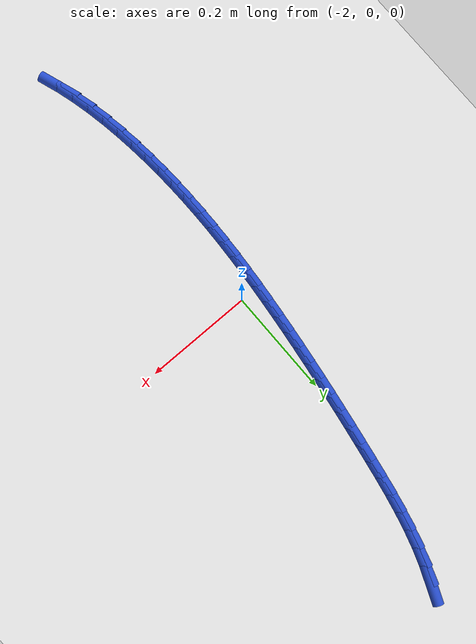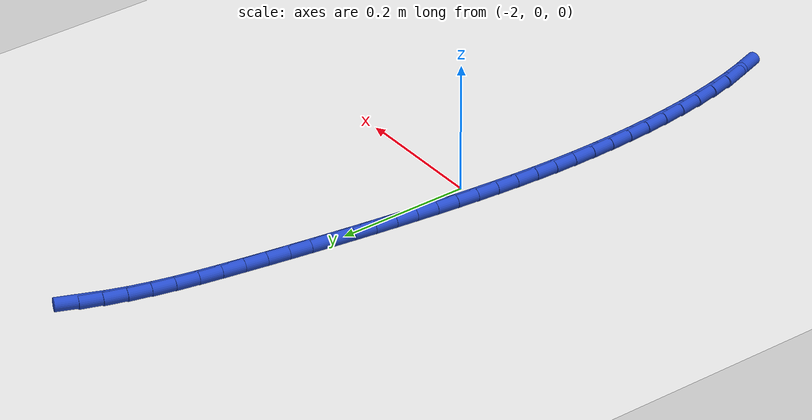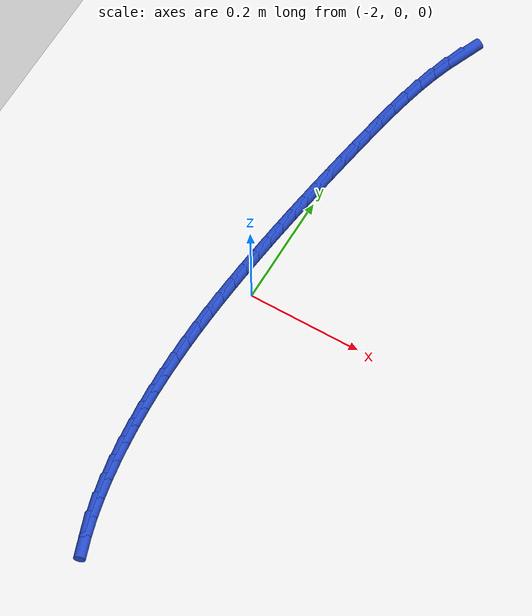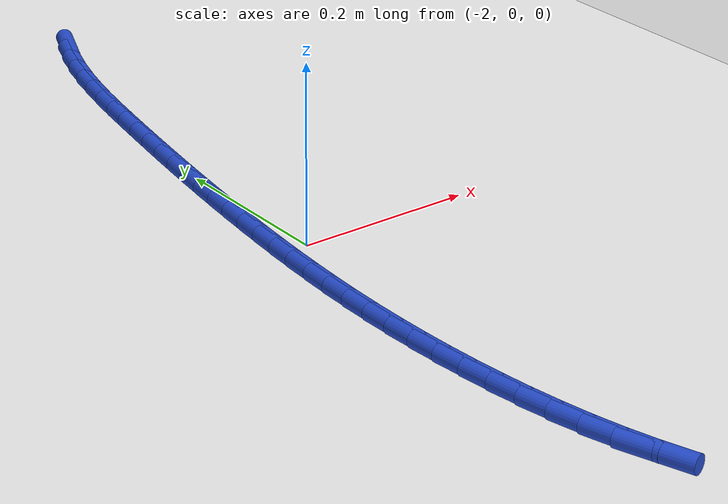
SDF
<sdf version="1.6">
 <world name="default">
  <model name="ground_plane">
   <static>1</static>
   <link name="link">
    <collision name="collision">
     <geometry><plane><normal>0 0 1</normal><size>100 100</size></plane></geometry>
     <surface><friction><ode><mu>100</mu><mu2>50</mu2></ode></friction></surface>
    </collision>
    <visual name="visual">
     <cast_shadows>0</cast_shadows>
     <geometry><plane><normal>0 0 1</normal><size>100 100</size></plane></geometry>
     <material>
      <script><uri>file://media/materials/scripts/gazebo.material</uri><name>Gazebo/WhiteGlow</name></script>
     </material>
    </visual>
   </link>
  </model>
  <model name="line">
   <link name="link_82">
    <pose>-1.928371689999309 0.5793839912906367 0.01 0 1.57 1.1767128693635323</pose>
    <collision name="collision">
     <geometry><cylinder><radius>0.01</radius><length>0.08</length></cylinder></geometry>
    </collision>
    <visual name="visual">
     <material>
      <script><name>Gazebo/Blue</name><uri>file://media/materials/scripts/gazebo.material</uri></script>
     </material>
     <geometry><cylinder><radius>0.01</radius><length>0.08</length></cylinder></geometry>
    </visual>
   </link>
   <link name="link_83">
    <pose>-1.9408741109656218 0.5493182701665158 0.01 0 1.57 1.2377879610943872</pose>
    <collision name="collision">
     <geometry><cylinder><radius>0.01</radius><length>0.08</length></cylinder></geometry>
    </collision>
    <visual name="visual">
     <material>
      <script><name>Gazebo/Blue</name><uri>file://media/materials/scripts/gazebo.material</uri></script>
     </material>
     <geometry><cylinder><radius>0.01</radius><length>0.08</length></cylinder></geometry>
    </visual>
   </link>
   <link name="link_84">
    <pose>-1.951651874403796 0.5181587281971894 0.01 0 1.57 1.288396880568661</pose>
    <collision name="collision">
     <geometry><cylinder><radius>0.01</radius><length>0.08</length></cylinder></geometry>
    </collision>
    <visual name="visual">
     <material>
      <script><name>Gazebo/Blue</name><uri>file://media/materials/scripts/gazebo.material</uri></script>
     </material>
     <geometry><cylinder><radius>0.01</radius><length>0.08</length></cylinder></geometry>
    </visual>
   </link>
   <link name="link_85">
    <pose>-1.960949134474584 0.4861162236051143 0.01 0 1.57 1.3292078590738747</pose>
    <collision name="collision">
     <geometry><cylinder><radius>0.01</radius><length>0.08</length></cylinder></geometry>
    </collision>
    <visual name="visual">
     <material>
      <script><name>Gazebo/Blue</name><uri>file://media/materials/scripts/gazebo.material</uri></script>
     </material>
     <geometry><cylinder><radius>0.01</radius><length>0.08</length></cylinder></geometry>
    </visual>
   </link>
   <link name="link_86">
    <pose>-1.9690100453387367 0.4534016146127484 0.01 0 1.57 1.3608674591322607</pose>
    <collision name="collision">
     <geometry><cylinder><radius>0.01</radius><length>0.08</length></cylinder></geometry>
    </collision>
    <visual name="visual">
     <material>
      <script><name>Gazebo/Blue</name><uri>file://media/materials/scripts/gazebo.material</uri></script>
     </material>
     <geometry><cylinder><radius>0.01</radius><length>0.08</length></cylinder></geometry>
    </visual>
   </link>
   <link name="link_87">
    <pose>-1.9760787611570068 0.4202257594425492 0.01 0 1.57 1.383909740635225</pose>
    <collision name="collision">
     <geometry><cylinder><radius>0.01</radius><length>0.08</length></cylinder></geometry>
    </collision>
    <visual name="visual">
     <material>
      <script><name>Gazebo/Blue</name><uri>file://media/materials/scripts/gazebo.material</uri></script>
     </material>
     <geometry><cylinder><radius>0.01</radius><length>0.08</length></cylinder></geometry>
    </visual>
   </link>
   <link name="link_88">
    <pose>-1.9823994360901445 0.38679951631697407 0.01 0 1.57 1.3987025672282007</pose>
    <collision name="collision">
     <geometry><cylinder><radius>0.01</radius><length>0.08</length></cylinder></geometry>
    </collision>
    <visual name="visual">
     <material>
      <script><name>Gazebo/Blue</name><uri>file://media/materials/scripts/gazebo.material</uri></script>
     </material>
     <geometry><cylinder><radius>0.01</radius><length>0.08</length></cylinder></geometry>
    </visual>
   </link>
   <link name="link_89">
    <pose>-1.9882162242989037 0.3533337434584808 0.01 0 1.57 1.4058946657048426</pose>
    <collision name="collision">
     <geometry><cylinder><radius>0.01</radius><length>0.08</length></cylinder></geometry>
    </collision>
    <visual name="visual">
     <material>
      <script><name>Gazebo/Blue</name><uri>file://media/materials/scripts/gazebo.material</uri></script>
     </material>
     <geometry><cylinder><radius>0.01</radius><length>0.08</length></cylinder></geometry>
    </visual>
   </link>
   <link name="link_90">
    <pose>-1.9937590482393874 0.3200260654052722 0.01 0 1.57 1.4105668031041376</pose>
    <collision name="collision">
     <geometry><cylinder><radius>0.01</radius><length>0.08</length></cylinder></geometry>
    </collision>
    <visual name="visual">
     <material>
      <script><name>Gazebo/Blue</name><uri>file://media/materials/scripts/gazebo.material</uri></script>
     </material>
     <geometry><cylinder><radius>0.01</radius><length>0.08</length></cylinder></geometry>
    </visual>
   </link>
   <link name="link_91">
    <pose>-1.999107213070123 0.2869340516699003 0.01 0 1.57 1.4157654196155374</pose>
    <collision name="collision">
     <geometry><cylinder><radius>0.01</radius><length>0.08</length></cylinder></geometry>
    </collision>
    <visual name="visual">
     <material>
      <script><name>Gazebo/Blue</name><uri>file://media/materials/scripts/gazebo.material</uri></script>
     </material>
     <geometry><cylinder><radius>0.01</radius><length>0.08</length></cylinder></geometry>
    </visual>
   </link>
   <link name="link_92">
    <pose>-2.004249457645657 0.2540310565636685 0.01 0 1.57 1.4215312784293013</pose>
    <collision name="collision">
     <geometry><cylinder><radius>0.01</radius><length>0.08</length></cylinder></geometry>
    </collision>
    <visual name="visual">
     <material>
      <script><name>Gazebo/Blue</name><uri>file://media/materials/scripts/gazebo.material</uri></script>
     </material>
     <geometry><cylinder><radius>0.01</radius><length>0.08</length></cylinder></geometry>
    </visual>
   </link>
   <link name="link_93">
    <pose>-2.0091732822341024 0.22128928266924433 0.01 0 1.57 1.4278604978135168</pose>
    <collision name="collision">
     <geometry><cylinder><radius>0.01</radius><length>0.08</length></cylinder></geometry>
    </collision>
    <visual name="visual">
     <material>
      <script><name>Gazebo/Blue</name><uri>file://media/materials/scripts/gazebo.material</uri></script>
     </material>
     <geometry><cylinder><radius>0.01</radius><length>0.08</length></cylinder></geometry>
    </visual>
   </link>
   <link name="link_94">
    <pose>-2.0138661871035723 0.18868093256929547 0.01 0 1.57 1.4347462300118203</pose>
    <collision name="collision">
     <geometry><cylinder><radius>0.01</radius><length>0.08</length></cylinder></geometry>
    </collision>
    <visual name="visual">
     <material>
      <script><name>Gazebo/Blue</name><uri>file://media/materials/scripts/gazebo.material</uri></script>
     </material>
     <geometry><cylinder><radius>0.01</radius><length>0.08</length></cylinder></geometry>
    </visual>
   </link>
   <link name="link_95">
    <pose>-2.018315672522181 0.15617820884648959 0.01 0 1.57 1.442178588195418</pose>
    <collision name="collision">
     <geometry><cylinder><radius>0.01</radius><length>0.08</length></cylinder></geometry>
    </collision>
    <visual name="visual">
     <material>
      <script><name>Gazebo/Blue</name><uri>file://media/materials/scripts/gazebo.material</uri></script>
     </material>
     <geometry><cylinder><radius>0.01</radius><length>0.08</length></cylinder></geometry>
    </visual>
   </link>
   <link name="link_96">
    <pose>-2.0225092387580403 0.12375331408349453 0.01 0 1.57 1.4501446077308269</pose>
    <collision name="collision">
     <geometry><cylinder><radius>0.01</radius><length>0.08</length></cylinder></geometry>
    </collision>
    <visual name="visual">
     <material>
      <script><name>Gazebo/Blue</name><uri>file://media/materials/scripts/gazebo.material</uri></script>
     </material>
     <geometry><cylinder><radius>0.01</radius><length>0.08</length></cylinder></geometry>
    </visual>
   </link>
   <link name="link_97">
    <pose>-2.0264343860792646 0.0913784508629772 0.01 0 1.57 1.4586282453498665</pose>
    <collision name="collision">
     <geometry><cylinder><radius>0.01</radius><length>0.08</length></cylinder></geometry>
    </collision>
    <visual name="visual">
     <material>
      <script><name>Gazebo/Blue</name><uri>file://media/materials/scripts/gazebo.material</uri></script>
     </material>
     <geometry><cylinder><radius>0.01</radius><length>0.08</length></cylinder></geometry>
    </visual>
   </link>
   <link name="link_98">
    <pose>-2.0300786147539673 0.059025821767605666 0.01 0 1.57 1.4676950255855228</pose>
    <collision name="collision">
     <geometry><cylinder><radius>0.01</radius><length>0.08</length></cylinder></geometry>
    </collision>
    <visual name="visual">
     <material>
      <script><name>Gazebo/Blue</name><uri>file://media/materials/scripts/gazebo.material</uri></script>
     </material>
     <geometry><cylinder><radius>0.01</radius><length>0.08</length></cylinder></geometry>
    </visual>
   </link>
   <link name="link_99">
    <pose>-2.0334266383383572 0.02666781947142263 0.01 0 1.57 1.4781153436558063</pose>
    <collision name="collision">
     <geometry><cylinder><radius>0.01</radius><length>0.08</length></cylinder></geometry>
    </collision>
    <visual name="visual">
     <material>
      <script><name>Gazebo/Blue</name><uri>file://media/materials/scripts/gazebo.material</uri></script>
     </material>
     <geometry><cylinder><radius>0.01</radius><length>0.08</length></cylinder></geometry>
    </visual>
   </link>
   <link name="link_100">
    <pose>-2.0364371265549046 -0.005721386810451544 0.01 0 1.57 1.4902989672346814</pose>
    <collision name="collision">
     <geometry><cylinder><radius>0.01</radius><length>0.08</length></cylinder></geometry>
    </collision>
    <visual name="visual">
     <material>
      <script><name>Gazebo/Blue</name><uri>file://media/materials/scripts/gazebo.material</uri></script>
     </material>
     <geometry><cylinder><radius>0.01</radius><length>0.08</length></cylinder></geometry>
    </visual>
   </link>
   <link name="link_101">
    <pose>-2.0390545411778924 -0.03816665868900908 0.01 0 1.57 1.50422061097316</pose>
    <collision name="collision">
     <geometry><cylinder><radius>0.01</radius><length>0.08</length></cylinder></geometry>
    </collision>
    <visual name="visual">
     <material>
      <script><name>Gazebo/Blue</name><uri>file://media/materials/scripts/gazebo.material</uri></script>
     </material>
     <geometry><cylinder><radius>0.01</radius><length>0.08</length></cylinder></geometry>
    </visual>
   </link>
   <link name="link_102">
    <pose>-2.0412232005290774 -0.07069284798984342 0.01 0 1.57 1.5198407036942827</pose>
    <collision name="collision">
     <geometry><cylinder><radius>0.01</radius><length>0.08</length></cylinder></geometry>
    </collision>
    <visual name="visual">
     <material>
      <script><name>Gazebo/Blue</name><uri>file://media/materials/scripts/gazebo.material</uri></script>
     </material>
     <geometry><cylinder><radius>0.01</radius><length>0.08</length></cylinder></geometry>
    </visual>
   </link>
   <link name="link_103">
    <pose>-2.0428874229302187 -0.10332480653854792 0.01 0 1.57 1.5371089281436998</pose>
    <collision name="collision">
     <geometry><cylinder><radius>0.01</radius><length>0.08</length></cylinder></geometry>
    </collision>
    <visual name="visual">
     <material>
      <script><name>Gazebo/Blue</name><uri>file://media/materials/scripts/gazebo.material</uri></script>
     </material>
     <geometry><cylinder><radius>0.01</radius><length>0.08</length></cylinder></geometry>
    </visual>
   </link>
   <link name="link_104">
    <pose>-2.043991526703074 -0.13608738616071608 0.01 0 1.57 1.55596350354361</pose>
    <collision name="collision">
     <geometry><cylinder><radius>0.01</radius><length>0.08</length></cylinder></geometry>
    </collision>
    <visual name="visual">
     <material>
      <script><name>Gazebo/Blue</name><uri>file://media/materials/scripts/gazebo.material</uri></script>
     </material>
     <geometry><cylinder><radius>0.01</radius><length>0.08</length></cylinder></geometry>
    </visual>
   </link>
   <link name="link_105">
    <pose>-2.0444798301694025 -0.16900543868194123 0.01 0 1.57 -1.565262017758838</pose>
    <collision name="collision">
     <geometry><cylinder><radius>0.01</radius><length>0.08</length></cylinder></geometry>
    </collision>
    <visual name="visual">
     <material>
      <script><name>Gazebo/Blue</name><uri>file://media/materials/scripts/gazebo.material</uri></script>
     </material>
     <geometry><cylinder><radius>0.01</radius><length>0.08</length></cylinder></geometry>
    </visual>
   </link>
   <link name="link_106">
    <pose>-2.044296651650962 -0.20210381592781684 0.01 0 1.57 -1.5434684458949228</pose>
    <collision name="collision">
     <geometry><cylinder><radius>0.01</radius><length>0.08</length></cylinder></geometry>
    </collision>
    <visual name="visual">
     <material>
      <script><name>Gazebo/Blue</name><uri>file://media/materials/scripts/gazebo.material</uri></script>
     </material>
     <geometry><cylinder><radius>0.01</radius><length>0.08</length></cylinder></geometry>
    </visual>
   </link>
   <link name="link_107">
    <pose>-2.0433863094695113 -0.23540736972393625 0.01 0 1.57 -1.5203468758595302</pose>
    <collision name="collision">
     <geometry><cylinder><radius>0.01</radius><length>0.08</length></cylinder></geometry>
    </collision>
    <visual name="visual">
     <material>
      <script><name>Gazebo/Blue</name><uri>file://media/materials/scripts/gazebo.material</uri></script>
     </material>
     <geometry><cylinder><radius>0.01</radius><length>0.08</length></cylinder></geometry>
    </visual>
   </link>
   <link name="link_108">
    <pose>-2.041693121946808 -0.268940951895893 0.01 0 1.57 -1.4960077049219576</pose>
    <collision name="collision">
     <geometry><cylinder><radius>0.01</radius><length>0.08</length></cylinder></geometry>
    </collision>
    <visual name="visual">
     <material>
      <script><name>Gazebo/Blue</name><uri>file://media/materials/scripts/gazebo.material</uri></script>
     </material>
     <geometry><cylinder><radius>0.01</radius><length>0.08</length></cylinder></geometry>
    </visual>
   </link>
   <link name="link_109">
    <pose>-2.0391614074046114 -0.30272941426928046 0.01 0 1.57 -1.4705706623687456</pose>
    <collision name="collision">
     <geometry><cylinder><radius>0.01</radius><length>0.08</length></cylinder></geometry>
    </collision>
    <visual name="visual">
     <material>
      <script><name>Gazebo/Blue</name><uri>file://media/materials/scripts/gazebo.material</uri></script>
     </material>
     <geometry><cylinder><radius>0.01</radius><length>0.08</length></cylinder></geometry>
    </visual>
   </link>
   <link name="link_110">
    <pose>-2.03573543855145 -0.33679743155324443 0.01 0 1.57 -1.4434225669274077</pose>
    <collision name="collision">
     <geometry><cylinder><radius>0.01</radius><length>0.08</length></cylinder></geometry>
    </collision>
    <visual name="visual">
     <material>
      <script><name>Gazebo/Blue</name><uri>file://media/materials/scripts/gazebo.material</uri></script>
     </material>
     <geometry><cylinder><radius>0.01</radius><length>0.08</length></cylinder></geometry>
    </visual>
   </link>
   <link name="link_111">
    <pose>-2.031342120976612 -0.3711022418276078 0.01 0 1.57 -1.412583877981043</pose>
    <collision name="collision">
     <geometry><cylinder><radius>0.01</radius><length>0.08</length></cylinder></geometry>
    </collision>
    <visual name="visual">
     <material>
      <script><name>Gazebo/Blue</name><uri>file://media/materials/scripts/gazebo.material</uri></script>
     </material>
     <geometry><cylinder><radius>0.01</radius><length>0.08</length></cylinder></geometry>
    </visual>
   </link>
   <link name="link_112">
    <pose>-2.025864898322679 -0.40543232016955855 0.01 0 1.57 -1.377326820277429</pose>
    <collision name="collision">
     <geometry><cylinder><radius>0.01</radius><length>0.08</length></cylinder></geometry>
    </collision>
    <visual name="visual">
     <material>
      <script><name>Gazebo/Blue</name><uri>file://media/materials/scripts/gazebo.material</uri></script>
     </material>
     <geometry><cylinder><radius>0.01</radius><length>0.08</length></cylinder></geometry>
    </visual>
   </link>
   <link name="link_113">
    <pose>-2.0191805259846825 -0.43955017115049766 0.01 0 1.57 -1.3370940261348836</pose>
    <collision name="collision">
     <geometry><cylinder><radius>0.01</radius><length>0.08</length></cylinder></geometry>
    </collision>
    <visual name="visual">
     <material>
      <script><name>Gazebo/Blue</name><uri>file://media/materials/scripts/gazebo.material</uri></script>
     </material>
     <geometry><cylinder><radius>0.01</radius><length>0.08</length></cylinder></geometry>
    </visual>
   </link>
   <link name="link_114">
    <pose>-2.011165759357655 -0.473218299341826 0.01 0 1.57 -1.2912275945551117</pose>
    <collision name="collision">
     <geometry><cylinder><radius>0.01</radius><length>0.08</length></cylinder></geometry>
    </collision>
    <visual name="visual">
     <material>
      <script><name>Gazebo/Blue</name><uri>file://media/materials/scripts/gazebo.material</uri></script>
     </material>
     <geometry><cylinder><radius>0.01</radius><length>0.08</length></cylinder></geometry>
    </visual>
   </link>
   <link name="link_115">
    <pose>-2.0016973538366285 -0.5061992093149444 0.01 0 1.57 -1.2389758611183</pose>
    <collision name="collision">
     <geometry><cylinder><radius>0.01</radius><length>0.08</length></cylinder></geometry>
    </collision>
    <visual name="visual">
     <material>
      <script><name>Gazebo/Blue</name><uri>file://media/materials/scripts/gazebo.material</uri></script>
     </material>
     <geometry><cylinder><radius>0.01</radius><length>0.08</length></cylinder></geometry>
    </visual>
   </link>
  </model>
 </world>
</sdf>
